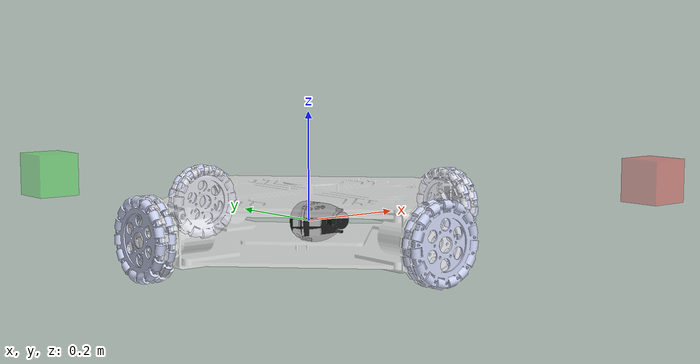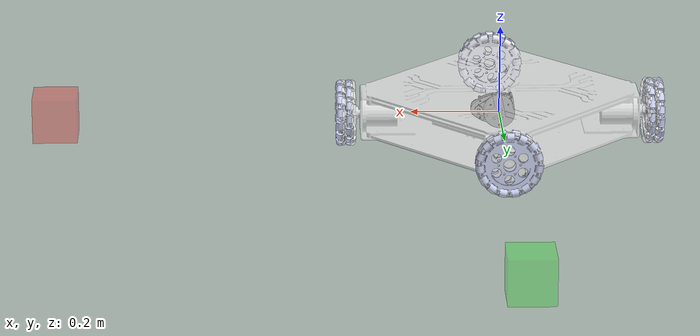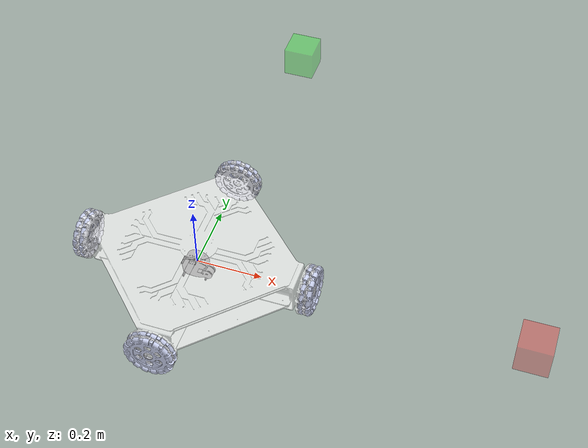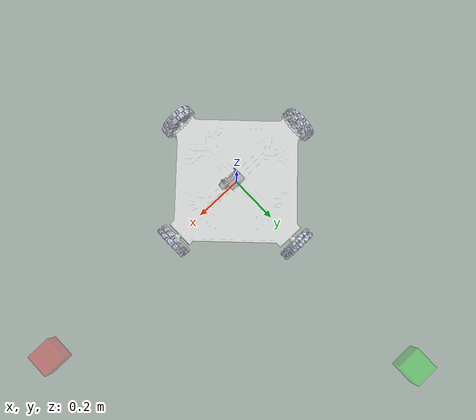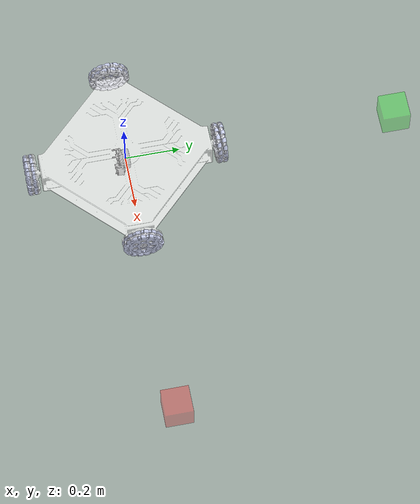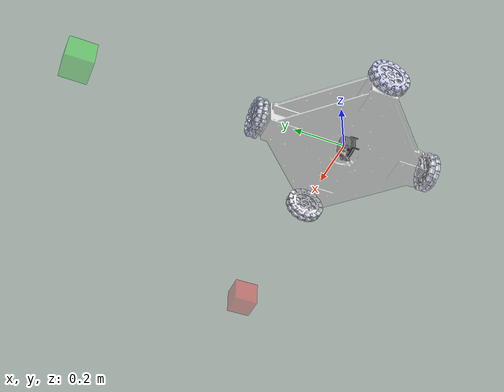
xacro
<?xml version="1.0"?>
<robot xmlns:xacro="http://www.ros.org/wiki/xacro" name="lidar_robot">
  <xacro:property name="wheel_len" value=".35521" />
  <xacro:property name="format" value="dae" />

  <xacro:include filename="$(find lidar_robot)/gazebo/base.gazebo" />
  <xacro:include filename="$(find lidar_robot)/gazebo/materials.xacro" />

    <xacro:macro name="wheel" params="wheel_no x y">
        <link name="wheel_${wheel_no}">
            <inertial>
                <origin xyz="2.018E-06 -1.33270000000008E-05 -0.013184" rpy="0 0 0" />
                <mass value="1.4753" />
                <inertia ixx="0.00196296986572325" ixy="-9.36007189523935E-08" ixz="-1.87549956536754E-08" iyy="-3.01353957649888E-07" iyz="-0.0019629938784401" izz="3.01353957650166E-07" />
            </inertial>
            <visual>
                <geometry>
                    <mesh filename="package://lidar_robot/meshes/wheel.${format}" />
                </geometry>
                <origin xyz="0 0 0" rpy="0 0 0" />
                <material name="aluminium">
                    <color rgba="0.79216 0.81961 0.93333 1" />
                </material>
            </visual>
            <collision>
                <origin xyz="0 0 0" rpy="1.5707963267949 0 0" />
                <geometry>
                    <mesh filename="package://lidar_robot/meshes/wheel.${format}" />
                </geometry>
            </collision>
        </link>
        <joint name="base_to_wheel_${wheel_no}" type="continuous">
            <axis xyz="0 1 0" />
            <parent link="base_link" />
            <child link="wheel_${wheel_no}" />
            <origin xyz="${x*wheel_len} ${y*wheel_len} 0" rpy="0 0 ${((pi/2) * -x) + (-((pi/2)*(y-1))*y)}" />
	    <dynamics damping="0.7"/>
        </joint>
	  <transmission name="tran_w_${wheel_no}">
	    <type>transmission_interface/SimpleTransmission</type>
	    <joint name="base_to_wheel_${wheel_no}">
              <hardwareInterface>EffortJointInterface</hardwareInterface>
            </joint>
            <actuator name="motor_w_${wheel_no}">
              <hardwareInterface>EffortJointInterface</hardwareInterface>
              <mechanicalReduction>1</mechanicalReduction>
            </actuator>
          </transmission>
    </xacro:macro>

    <link name="base_link">
        <inertial>
            <origin xyz="-0.0099877 -7.87679999999704E-06 0.048337" rpy="0 0 0" />
            <mass value="6.0202" />
            <inertia ixx="0.193404669051707" ixy="-1.57451867364915E-06" ixz="7.52537384896092E-06" iyy="1.01182032486468E-06" iyz="-0.193412304186565" izz="-1.01182032483072E-06" />
        </inertial>
        <visual>
            <origin xyz="0 0 0" rpy="1.5707963267949 0 0" />
            <geometry>
                <mesh filename="package://lidar_robot/meshes/base.stl" />
            </geometry>
            <material name="">
                <color rgba="1 1 1 0.7" />
            </material>
        </visual>
        <collision>
            <origin xyz="0 0 0" rpy="${pi/2} 0 0" />
            <geometry>
                <mesh filename="package://lidar_robot/meshes/base.stl" />
            </geometry>
        </collision>
    </link>

    <xacro:wheel wheel_no="1" x="0" y="1" />
    <xacro:wheel wheel_no="2" x="-1" y="0" />
    <xacro:wheel wheel_no="3" x="0" y="-1" />
    <xacro:wheel wheel_no="4" x="1" y="0" />

  <link name="rplidar">
    <collision>
      <origin xyz="0 0 0" rpy="0 0 0"/>
      <geometry>
    <box size="0.1 0.1 0.1"/>
      </geometry>
    </collision>
    <visual>
      <origin xyz="0 0 0" rpy="0 0 0"/>
      <geometry>
        <mesh filename="package://lidar_robot/meshes/rplidar.stl"/>
      </geometry>
      <material name="">
                <color rgba="0.1 0.1 0.1 1" />
      </material>
    </visual>
    <inertial>
      <origin xyz="0.010606 0.000652570000000001 0.015976" rpy="0 0 0" />
      <mass value="0.095964" />
      <inertia ixx="4.20678723401718E-05" ixy="-1.30097836316357E-05" ixz="4.33129403884459E-07" iyy="1.48659304158389E-06" iyz="-7.76207439662319E-05" izz="-1.48659304158388E-06" />
    </inertial>
  </link>
  <joint name="rplidar_joint" type="fixed">
    <axis xyz="0 1 0" />
    <origin xyz="0 0 0" rpy="0 0 0"/>
    <child link="rplidar"/>
    <parent link="base_link"/>
  </joint>

  <link name="x">
    <visual>
      <origin xyz="0 0 0" rpy="0 0 0"/>
      <geometry>
        <box size="0.1 0.1 0.1"/>
      </geometry>
      <material name="">
        <color rgba="1 0 0 0.3" />
      </material>
    </visual>
  </link>
  <joint name="x_joint" type="fixed">
    <origin xyz="1 0 0" rpy="0 0 0"/>
    <child link="x"/>
    <parent link="base_link"/>
  </joint>

  <link name="y">
    <visual>
      <origin xyz="0 0 0" rpy="0 0 0"/>
      <geometry>
        <box size="0.1 0.1 0.1"/>
      </geometry>
      <material name="">
        <color rgba="0 1 0 0.3" />
      </material>
    </visual>
  </link>
  <joint name="y_joint" type="fixed">
    <origin xyz="0 1 0" rpy="0 0 0"/>
    <child link="y"/>
    <parent link="base_link"/>
  </joint>

</robot>

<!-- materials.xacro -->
<robot>

    <material name="black">
        <color rgba="0.0 0.0 0.0 1.0"/>
    </material>

    <material name="green">
        <color rgba="0.0 0.8 0.0 1.0"/>
    </material>

    <material name="grey">
        <color rgba="0.2 0.2 0.2 1.0"/>
    </material>

    <material name="transparent_acrylic">
        <color rgba="0.8 0.8 0.8 0.4"/>
    </material>

    <material name="transparent_acrylic_dark">
        <color rgba="0.4 0.4 0.4 0.4"/>
    </material>

    <material name="aluminium">
        <color rgba="0.8 0.8 0.8 1"/>
    </material>

    <material name="aluminium_dark">
        <color rgba="0.6 0.6 0.6 1"/>
    </material>

    <material name="plastic">
        <color rgba="0.95 0.95 0.95 1"/>
    </material>

    <material name="black_plastic">
        <color rgba="0.0 0.0 0.0 1"/>
    </material>

    <material name="blue">
        <color rgba="0 0 1.0 1"/>
    </material>

    <material name="bronze">
        <color rgba="0.8039 0.498 0.196 1"/>
    </material>

    <material name="orange">
        <color rgba="${255/255} ${108/255} ${10/255} 1.0"/>
    </material>

    <material name="brown">
        <color rgba="${222/255} ${207/255} ${195/255} 1.0"/>
    </material>

    <material name="red">
        <color rgba="0.8 0.0 0.0 1.0"/>
    </material>

    <material name="white">
        <color rgba="1.0 1.0 1.0 1.0"/>
    </material>

</robot>
